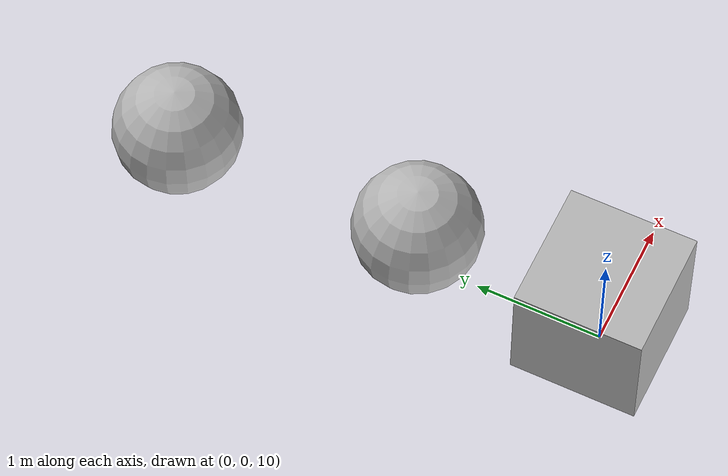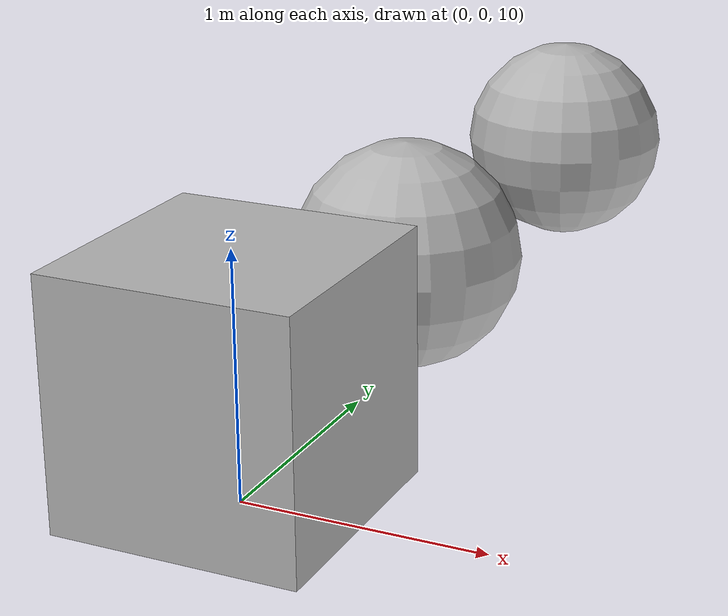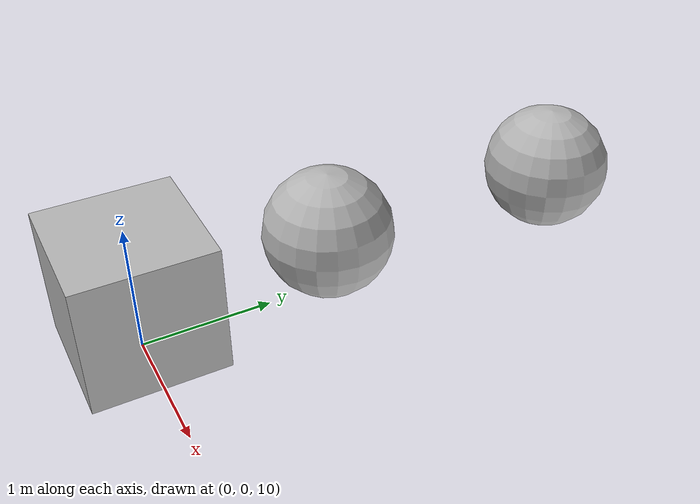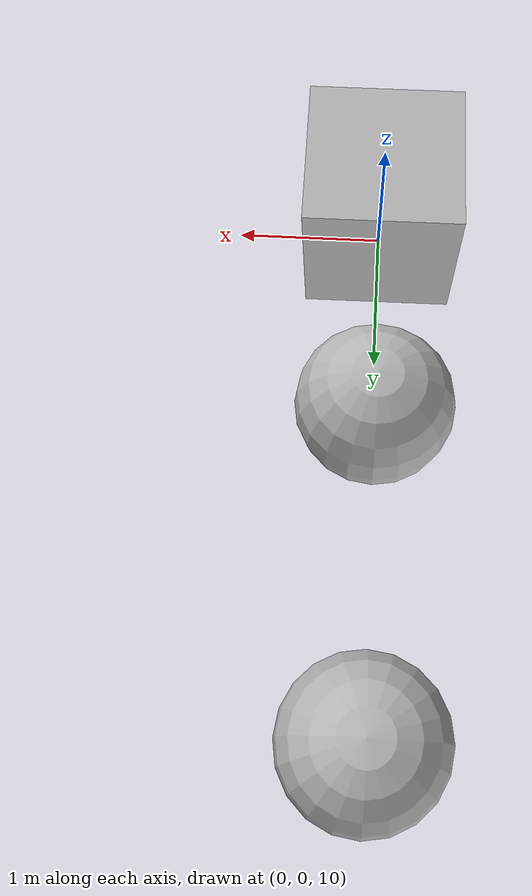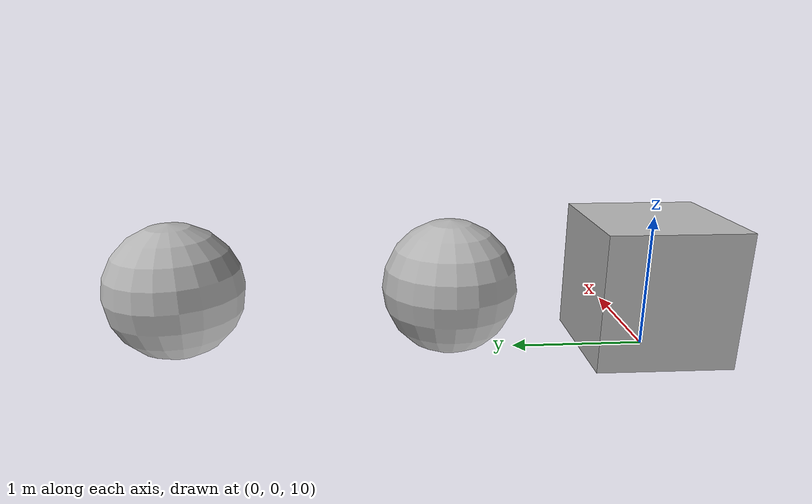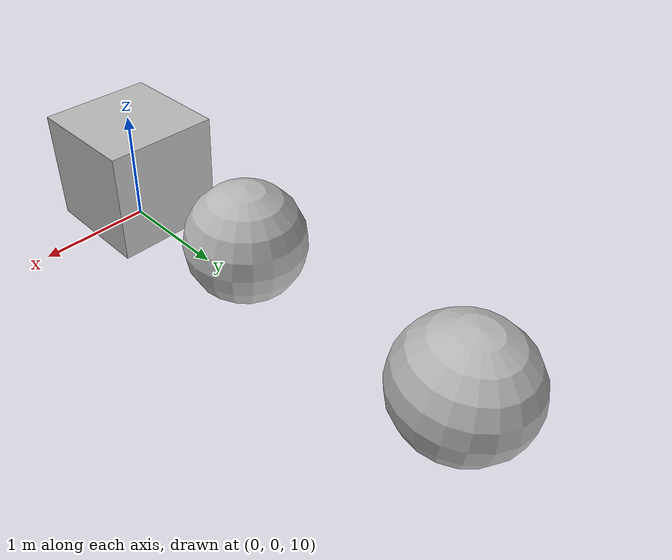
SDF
<?xml version="1.0" ?>
<sdf version="1.3">
  <world name="default">
    <physics type="ode">
      <gravity>0.0 0.0 -10</gravity>
      <ode>
        <solver>
          <type>parallel_quick</type>
          <dt>0.001</dt>
          <iters>53</iters>
          <sor>1.3</sor>
        </solver>
        <constraints>
          <cfm>0.00001</cfm>
          <erp>0.300000</erp>
          <contact_max_correcting_vel>0.0</contact_max_correcting_vel>
          <contact_surface_layer>0.0</contact_surface_layer>
        </constraints>
      </ode>
    </physics>
    <include>
        <uri>model://ground_plane</uri>
    </include>
    <include>
        <uri>model://sun</uri>
    </include>
    <model name="box">
      <pose>0 0 10.5 0 0 0</pose>
      <allow_auto_disable>false</allow_auto_disable>
      <link name="link">
        <inertial>
          <inertia>
            <ixx>1</ixx>
            <ixy>0</ixy>
            <ixz>0</ixz>
            <iyy>1</iyy>
            <iyz>0</iyz>
            <izz>1</izz>
          </inertia>
          <mass>1.0</mass>
        </inertial>
        <velocity_decay>
          <linear>0.0</linear>
          <angular>0.0</angular>
        </velocity_decay>
        <collision name="collision">
          <geometry>
            <box>
              <size>1.0 1.0 1.0</size>
            </box>
          </geometry>
          <surface>
            <friction>
              <ode>
                <mu>1</mu>
                <mu2>1</mu2>
              </ode>
            </friction>
            <contact>
              <ode>
                <max_vel>0</max_vel>
                <min_depth>0</min_depth>
              </ode>
            </contact>
          </surface>
        </collision>
        <visual name="visual">
          <geometry>
            <box>
              <size>1 1 1</size>
            </box>
          </geometry>
          <material>
            <script>Gazebo/WoodPallet</script>
          </material>
        </visual>
      </link>
    </model>
    <model name="sphere_1">
      <pose>0 1.5 10.5 0 0 0</pose>
      <allow_auto_disable>false</allow_auto_disable>
      <link name="link">
        <inertial>
          <inertia>
            <ixx>1</ixx>
            <ixy>0</ixy>
            <ixz>0.3</ixz>
            <iyy>1</iyy>
            <iyz>0</iyz>
            <izz>1</izz>
          </inertia>
          <mass>1.0</mass>
        </inertial>
        <velocity_decay>
          <linear>0.0</linear>
          <angular>0.0</angular>
        </velocity_decay>
        <collision name="collision">
          <geometry>
            <sphere>
              <radius>0.5</radius>
            </sphere>
          </geometry>
          <surface>
            <friction>
              <ode>
                <mu>0.5</mu>
                <mu2>1</mu2>
              </ode>
            </friction>
            <contact>
              <ode>
                <max_vel>0</max_vel>
                <min_depth>0</min_depth>
              </ode>
            </contact>
          </surface>
        </collision>
        <visual name="visual">
          <geometry>
            <sphere>
              <radius>0.5</radius>
            </sphere>
          </geometry>
          <material>
            <script>Gazebo/WoodPallet</script>
          </material>
        </visual>
      </link>
    </model>
    <model name="sphere_2">
      <pose>0 3.5 10.5 0 0 0</pose>
      <allow_auto_disable>false</allow_auto_disable>
      <link name="link">
        <inertial>
          <inertia>
            <ixx>1</ixx>
            <ixy>0</ixy>
            <ixz>0.3</ixz>
            <iyy>1</iyy>
            <iyz>0</iyz>
            <izz>1</izz>
          </inertia>
          <mass>1.0</mass>
        </inertial>
        <velocity_decay>
            <linear>0.0</linear>
            <angular>0.0</angular>
        </velocity_decay>
        <collision name="collision">
          <geometry>
            <sphere>
              <radius>0.5</radius>
            </sphere>
          </geometry>
          <surface>
            <friction>
              <ode>
                <mu>0.5</mu>
                <mu2>1</mu2>
              </ode>
            </friction>
            <contact>
              <ode>
                <max_vel>0</max_vel>
                <min_depth>0</min_depth>
              </ode>
            </contact>
          </surface>
        </collision>
        <visual name="visual">
          <geometry>
            <sphere>
              <radius>0.5</radius>
            </sphere>
          </geometry>
          <material>
            <script>Gazebo/WoodPallet</script>
          </material>
        </visual>
      </link>
    </model>

    <light type="directional" name="sun">
      <pose>0 0 10 0 0 0</pose>
      <diffuse>8 .8 .8 1</diffuse>
      <specular>.1 .1 .1 1</specular>
      <attenuation>
        <range>10</range>
        <linear>0.01</linear>
        <constant>0.8</constant>
        <quadratic>0.0</quadratic>
      </attenuation>
      <direction>0 .5 -.5</direction>
      <cast_shadows>true</cast_shadows>
    </light>
  </world>
</sdf>
